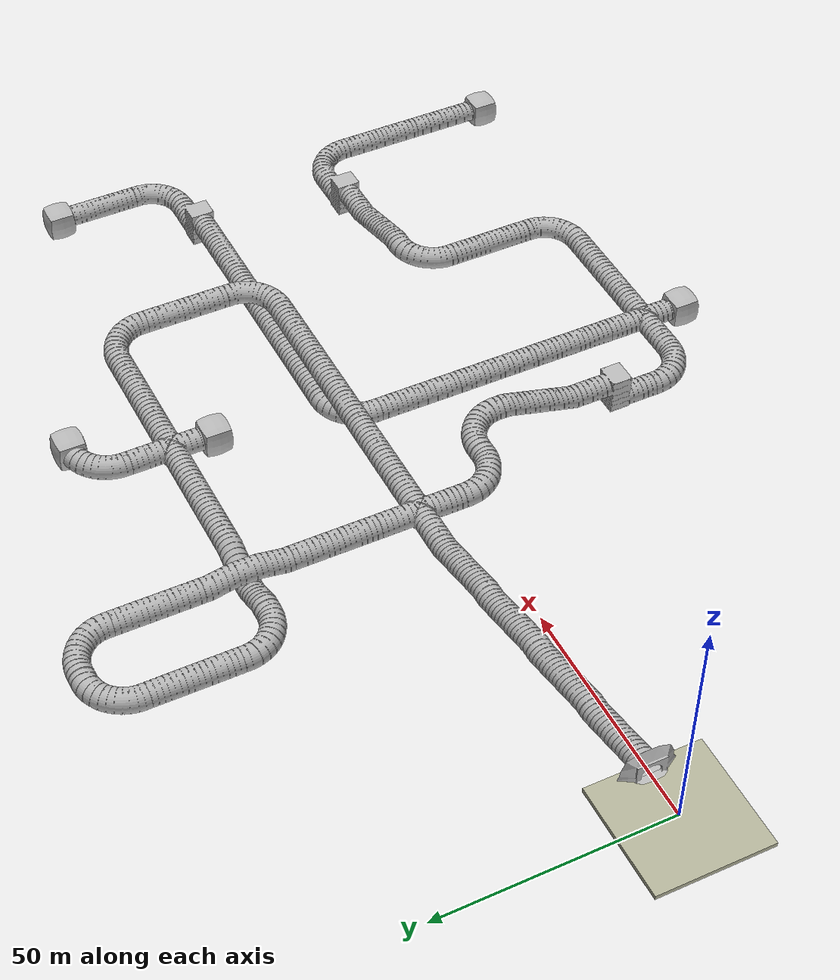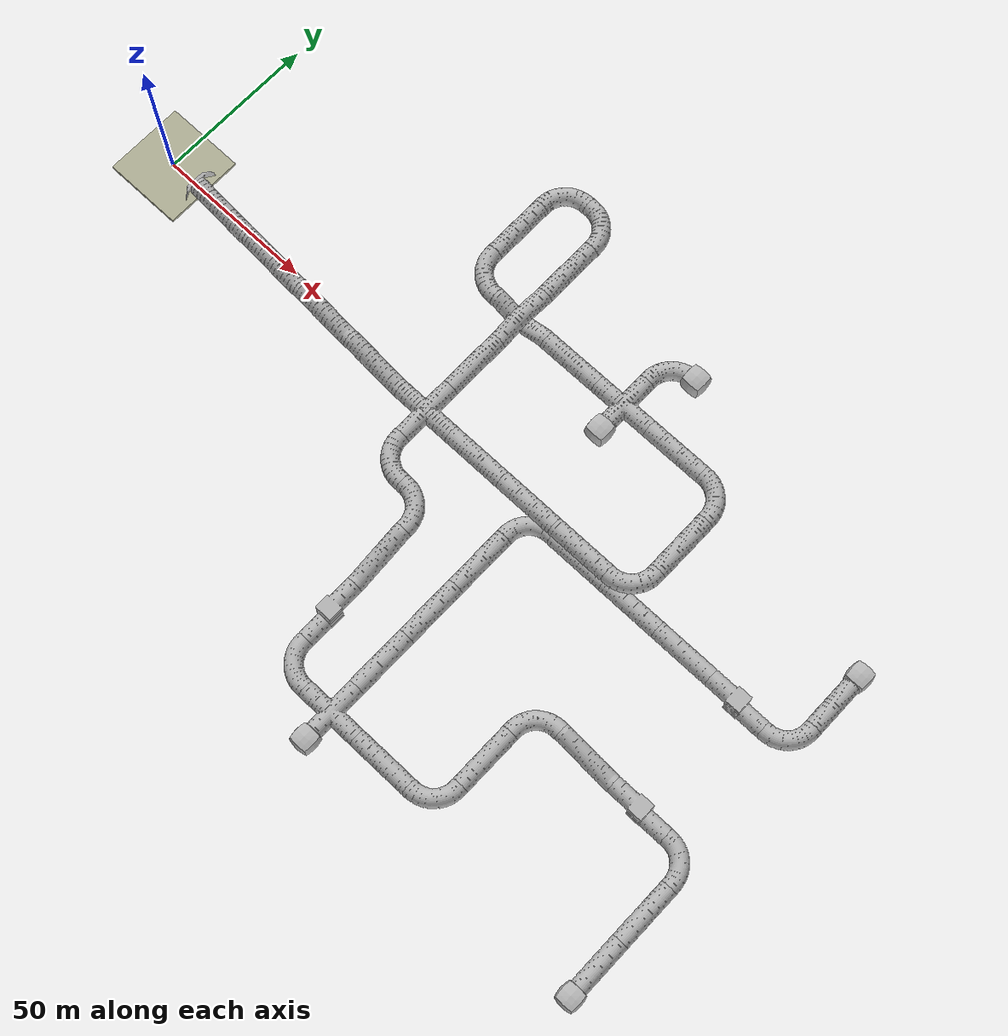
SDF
<sdf version="1.6">
 <world name="default">
  <scene>
   <ambient>0.0 0.0 0.0 1.0</ambient>
   <background>0.34 0.39 0.43 1.0</background>
   <grid>false</grid>
   <origin_visual>true</origin_visual>
  </scene>
  <model name="staging">
   <pose>0 0 -0.002 0 0 0</pose>
   <static>true</static>
   <link name="link">
    <pose>0 0 -0.5 0 0 0</pose>
    <visual name="visual">
     <geometry><box><size>25 25 1</size></box></geometry>
     <material>
      <script><uri>file://media/materials/scripts/gazebo.material</uri><name>Gazebo/Residential</name></script>
     </material>
    </visual>
    <collision name="collision"><geometry><box><size>25 20 1</size></box></geometry></collision>
   </link>
  </model>
  <model name="mine_entrance">
   <pose>10
        0
        -0.001
        0
        0
        -1.5707963267948966</pose>
   <static>true</static>
   <link name="link">
    <collision name="collision">
     <geometry>
      <mesh>
       <scale>0.008
                0.008 0.008</scale>
       <uri>model://mine_entrance/meshes/Entrance.obj</uri>
      </mesh>
     </geometry>
    </collision>
    <visual name="visual">
     <geometry>
      <mesh>
       <scale>0.008
                0.008 0.008</scale>
       <uri>model://mine_entrance/meshes/Entrance.obj</uri>
      </mesh>
     </geometry>
    </visual>
   </link>
  </model>
  <model name="start_area">
   <static>true</static>
   <pose>10
        0
        1.5
        0
        0
        0</pose>
   <link name="link">
    <collision name="collision">
     <geometry><box><size>1.0
                5.0
                3.0</size></box></geometry>
     <surface><contact><collide_without_contact>1</collide_without_contact></contact></surface>
    </collision>
    <sensor name="start_area_sensor" type="contact"><contact><collision>collision</collision></contact></sensor>
   </link>
   <plugin name="touch_start_area" filename="libTouchPlugin.so">
    <sensor>start_area_sensor</sensor>
    <time>0.001</time>
    <namespace>subt/start</namespace>
    <enabled>true</enabled>
   </plugin>
  </model>
  <plugin name="game_logic_plugin" filename="libGameLogicPlugin.so">
   <object_of_interest><name>cone_1</name></object_of_interest>
   <object_of_interest><name>cone_2</name></object_of_interest>
  </plugin>
  <light name="user_spot_light_0" type="spot">
   <pose>12 0 15 0 0.65 0</pose>
   <diffuse>1 1 1 1</diffuse>
   <specular>0.1 0.1 0.1 1</specular>
   <direction>0 0 -1</direction>
   <attenuation>
    <range>30</range>
    <constant>0.001</constant>
    <linear>0.01</linear>
    <quadratic>0.000</quadratic>
   </attenuation>
   <spot><inner_angle>0.0</inner_angle><outer_angle>1.5</outer_angle><falloff>0.01</falloff></spot>
  </light>
  <include><uri>model://mine_tile_6</uri><name>tile_1</name><pose>20 0 -5 0 0 1.5708</pose></include>
  <include><uri>model://mine_tile_6</uri><name>tile_2</name><pose>40 0 -10 0 0 1.5708</pose></include>
  <include><uri>model://mine_tile_6</uri><name>tile_3</name><pose>60 0 -15 0 0 1.5708</pose></include>
  <include><uri>model://mine_tile_6</uri><name>tile_4</name><pose>80 0 -20 0 0 1.5708</pose></include>
  <include><uri>model://mine_tile_1</uri><name>tile_5</name><pose>100 0 -20 0 0 0</pose></include>
  <include><uri>model://mine_tile_5</uri><name>tile_6</name><pose>120 0 -20 0 0 1.5708</pose></include>
  <include><uri>model://mine_tile_5</uri><name>tile_7</name><pose>140 0 -20 0 0 1.5708</pose></include>
  <include><uri>model://mine_tile_5</uri><name>tile_8</name><pose>160 0 -20 0 0 1.5708</pose></include>
  <include><uri>model://mine_tile_2</uri><name>tile_9</name><pose>180 0 -20 0 0 3.14159</pose></include>
  <include><uri>model://mine_tile_5</uri><name>tile_10</name><pose>180 20 -20 0 0 0</pose></include>
  <include><uri>model://mine_tile_2</uri><name>tile_11</name><pose>180 40 -20 0 0 -1.5708</pose></include>
  <include><uri>model://mine_tile_5</uri><name>tile_12</name><pose>160 40 -20 0 0 1.5708</pose></include>
  <include><uri>model://mine_tile_1</uri><name>tile_13</name><pose>140 40 -20 0 0 0</pose></include>
  <include><uri>model://mine_tile_5</uri><name>tile_14</name><pose>120 40 -20 0 0 1.5708</pose></include>
  <include><uri>model://mine_tile_4</uri><name>tile_15</name><pose>100 40 -20 0 0 0</pose></include>
  <include><uri>model://mine_tile_2</uri><name>tile_16</name><pose>80 40 -20 0 0 1.5708</pose></include>
  <include><uri>model://mine_tile_5</uri><name>tile_17</name><pose>80 60 -20 0 0 0</pose></include>
  <include><uri>model://mine_tile_2</uri><name>tile_18</name><pose>80 80 -20 0 0 0</pose></include>
  <include><uri>model://mine_tile_2</uri><name>tile_19</name><pose>100 80 -20 0 0 -1.5708</pose></include>
  <include><uri>model://mine_tile_5</uri><name>tile_20</name><pose>100 60 -20 0 0 0</pose></include>
  <include><uri>model://mine_tile_5</uri><name>tile_21</name><pose>100 20 -20 0 0 0</pose></include>
  <include><uri>model://mine_tile_2</uri><name>tile_22</name><pose>140 60 -20 0 0 0</pose></include>
  <include><uri>model://mine_tile_2</uri><name>tile_23</name><pose>100 -20 -20 0 0 1.5708</pose></include>
  <include><uri>model://mine_tile_2</uri><name>tile_24</name><pose>120 -20 -20 0 0 -1.5708</pose></include>
  <include><uri>model://mine_tile_6</uri><name>tile_25</name><pose>120 -40 -25 0 0 0</pose></include>
  <include><uri>model://mine_tile_7</uri><name>tile_26</name><pose>120 -60 -30 0 0 0</pose></include>
  <include><uri>model://mine_tile_2</uri><name>tile_27</name><pose>120 -80 -30 0 0 1.5708</pose></include>
  <include><uri>model://mine_tile_1</uri><name>tile_28</name><pose>140 -80 -30 0 0 0</pose></include>
  <include><uri>model://mine_tile_5</uri><name>tile_29</name><pose>140 -60 -30 0 0 0</pose></include>
  <include><uri>model://mine_tile_5</uri><name>tile_30</name><pose>140 -40 -30 0 0 0</pose></include>
  <include><uri>model://mine_tile_5</uri><name>tile_31</name><pose>140 -20 -30 0 0 0</pose></include>
  <include><uri>model://mine_tile_2</uri><name>tile_32</name><pose>140 0 -30 0 0 0</pose></include>
  <include><uri>model://mine_tile_5</uri><name>tile_33</name><pose>160 0 -30 0 0 1.5708</pose></include>
  <include><uri>model://mine_tile_5</uri><name>tile_34</name><pose>180 0 -30 0 0 1.5708</pose></include>
  <include><uri>model://mine_tile_5</uri><name>tile_35</name><pose>200 0 -30 0 0 1.5708</pose></include>
  <include><uri>model://mine_tile_7</uri><name>tile_36</name><pose>220 0 -35 0 0 1.5708</pose></include>
  <include><uri>model://mine_tile_2</uri><name>tile_37</name><pose>240 0 -35 0 0 3.14159</pose></include>
  <include><uri>model://mine_tile_5</uri><name>tile_38</name><pose>240 20 -35 0 0 0</pose></include>
  <include><uri>model://mine_tile_5</uri><name>tile_39</name><pose>160 -80 -30 0 0 1.5708</pose></include>
  <include><uri>model://mine_tile_2</uri><name>tile_40</name><pose>180 -80 -30 0 0 3.14159</pose></include>
  <include><uri>model://mine_tile_5</uri><name>tile_41</name><pose>180 -60 -30 0 0 0</pose></include>
  <include><uri>model://mine_tile_2</uri><name>tile_42</name><pose>180 -40 -30 0 0 0</pose></include>
  <include><uri>model://mine_tile_6</uri><name>tile_43</name><pose>200 -40 -35 0 0 1.5708</pose></include>
  <include><uri>model://mine_tile_7</uri><name>tile_44</name><pose>220 -40 -40 0 0 1.5708</pose></include>
  <include><uri>model://mine_tile_2</uri><name>tile_45</name><pose>240 -40 -40 0 0 -1.5708</pose></include>
  <include><uri>model://mine_tile_5</uri><name>tile_46</name><pose>240 -60 -40 0 0 0</pose></include>
  <include><uri>model://mine_tile_5</uri><name>tile_47</name><pose>240 -80 -40 0 0 0</pose></include>
  <include><uri>model://mine_tile_blocker</uri><name>blocker_1</name><pose>140 30 -20 0 0 0</pose></include>
  <include><uri>model://mine_tile_blocker</uri><name>blocker_2</name><pose>150 60 -20 0 0 0</pose></include>
  <include><uri>model://mine_tile_blocker</uri><name>blocker_3</name><pose>140 -90 -30 0 0 0</pose></include>
  <include><uri>model://mine_tile_blocker</uri><name>blocker_4</name><pose>240 30 -35 0 0 0</pose></include>
  <include><uri>model://mine_tile_blocker</uri><name>blocker_5</name><pose>240 -90 -40 0 0 0</pose></include>
  <plugin name="comms_broker_plugin" filename="libCommsBrokerPlugin.so"/>
  <plugin name="ros_interface_plugin" filename="librotors_gazebo_ros_interface_plugin.so"/>
 </world>
</sdf>

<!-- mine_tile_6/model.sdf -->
<sdf version="1.6">
  <model name="mine_tile_6">
    <static>true</static>
    <link name="link">
      <pose>0 0 0 0 0 0</pose>
      <collision name="collision">
        <geometry>
          <mesh>
            <uri>model://mine_tile_6/meshes/mine_tile_6.dae</uri>
          </mesh>
        </geometry>
      </collision>

      <collision name="collision_ground_1">
        <pose>0 9.323 5 0 0 0</pose>
        <geometry>
          <box>
            <size>6.356 1.354 0.001</size>
          </box>
        </geometry>
      </collision>

      <collision name="collision_ground_2">
        <pose>0 -0.070 2.467 0.2827433 0 0</pose>
        <geometry>
          <box>
            <size>6.356 18.152 0.001</size>
          </box>
        </geometry>
      </collision>

      <collision name="collision_ground_3">
        <pose>0 -9.272 0 0 0 0</pose>
        <geometry>
          <box>
            <size>6.356 1.455 0.001</size>
          </box>
        </geometry>
      </collision>

      <visual name="visual">
        <geometry>
          <mesh>
            <uri>model://mine_tile_6/meshes/mine_tile_6.dae</uri>
          </mesh>
        </geometry>
      </visual>
    </link>
  </model>
</sdf>

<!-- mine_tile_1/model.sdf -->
<sdf version="1.6">
  <model name="mine_tile_1">
    <static>true</static>
    <link name="link">
      <collision name="collision">
        <geometry>
          <mesh>
            <uri>model://mine_tile_1/meshes/mine_tile_1.dae</uri>
          </mesh>
        </geometry>
      </collision>
      <collision name="collision_ground">
        <geometry>
          <box>
            <size>20 20 0.001</size>
          </box>
        </geometry>
      </collision>
      <visual name="visual">
        <geometry>
          <mesh>
            <uri>model://mine_tile_1/meshes/mine_tile_1.dae</uri>
          </mesh>
        </geometry>
      </visual>
    </link>
  </model>
</sdf>

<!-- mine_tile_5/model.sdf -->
<sdf version="1.6">
  <model name="mine_tile_5">
    <static>true</static>
    <link name="link">
      <collision name="collision">
        <geometry>
          <mesh>
            <uri>model://mine_tile_5/meshes/mine_tile_5.dae</uri>
          </mesh>
        </geometry>
      </collision>
      <collision name="collision_ground">
        <geometry>
          <box>
            <size>20 20 0.001</size>
          </box>
        </geometry>
      </collision>
      <visual name="visual">
        <geometry>
          <mesh>
            <uri>model://mine_tile_5/meshes/mine_tile_5.dae</uri>
          </mesh>
        </geometry>
      </visual>
    </link>
  </model>
</sdf>

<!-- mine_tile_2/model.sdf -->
<sdf version="1.6">
  <model name="mine_tile_2">
    <static>true</static>
    <link name="link">
      <collision name="collision">
        <geometry>
          <mesh>
            <uri>model://mine_tile_2/meshes/mine_tile_2.dae</uri>
          </mesh>
        </geometry>
      </collision>
      <collision name="collision_ground">
        <geometry>
          <box>
            <size>20 20 0.001</size>
          </box>
        </geometry>
      </collision>
      <visual name="visual">
        <geometry>
          <mesh>
            <uri>model://mine_tile_2/meshes/mine_tile_2.dae</uri>
          </mesh>
        </geometry>
      </visual>
    </link>
  </model>
</sdf>

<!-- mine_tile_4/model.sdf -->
<sdf version="1.6">
  <model name="mine_tile_4">
    <static>true</static>
    <link name="link">
      <pose>0 0 0 0 0 0</pose>
      <collision name="collision">
        <geometry>
          <mesh>
            <uri>model://mine_tile_4/meshes/mine_tile_4.dae</uri>
          </mesh>
        </geometry>
      </collision>

      <collision name="collision_ground_1">
        <pose>0 9.32313 0 0 0 0</pose>
        <geometry>
          <box>
            <size>4.96733 1.35375 0.001</size>
          </box>
        </geometry>
      </collision>

      <collision name="collision_ground_2">
        <pose>0 5.630 0.600 -0.196366994 0 0</pose>
        <geometry>
          <box>
            <size>4.96733 6.1507 0.001</size>
          </box>
        </geometry>
      </collision>

      <collision name="collision_ground_3">
        <pose>0 0 1.2 0 0 0</pose>
        <geometry>
          <box>
            <size>4.96733 5.2175 0.001</size>
          </box>
        </geometry>
      </collision>

      <collision name="collision_ground_4">
        <pose>0 -5.620 0.600000 0.196366994 0 0</pose>
        <geometry>
          <box>
            <size>4.96733 6.1507 0.001</size>
          </box>
        </geometry>
      </collision>

      <collision name="collision_ground_5">
        <pose>0 -9.31813 0 0 0 0</pose>
        <geometry>
          <box>
            <size>4.96733 1.36375 0.001</size>
          </box>
        </geometry>
      </collision>

      <collision name="collision_ground_6">
        <pose>9.32313 0 0 0 0 0</pose>
        <geometry>
          <box>
            <size>1.35375 4.96733 0.001</size>
          </box>
        </geometry>
      </collision>

      <collision name="collision_ground_7">
        <pose>5.630 0 -1.25 0 -0.39287361 0</pose>
        <geometry>
          <box>
            <size>6.53001 4.96733 0.001</size>
          </box>
        </geometry>
      </collision>

      <collision name="collision_ground_8">
        <pose>0 0 -2.5 0 0 0</pose>
        <geometry>
          <box>
            <size>5.2175 4.96733 0.001</size>
          </box>
        </geometry>
      </collision>

      <collision name="collision_ground_9">
        <pose>-5.620 0 -1.25 0 0.39287361 0</pose>
        <geometry>
          <box>
            <size>6.53001 4.96733 0.001</size>
          </box>
        </geometry>
      </collision>

      <collision name="collision_ground_10">
        <pose>-9.31813 0 0 0 0 0</pose>
        <geometry>
          <box>
            <size>1.36375 4.96733 0.001</size>
          </box>
        </geometry>
      </collision>

      <visual name="visual">
        <geometry>
          <mesh>
            <uri>model://mine_tile_4/meshes/mine_tile_4.dae</uri>
          </mesh>
        </geometry>
      </visual>
    </link>
  </model>
</sdf>

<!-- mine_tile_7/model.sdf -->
<sdf version="1.6">
  <model name="mine_tile_7">
    <static>true</static>
    <link name="link">
      <collision name="collision">
        <geometry>
          <mesh>
            <uri>model://mine_tile_7/meshes/mine_tile_7.dae</uri>
          </mesh>
        </geometry>
      </collision>
      <collision name="collision_ground_1">
        <pose>0 6.14028 5 0 0 0</pose>
        <geometry>
          <box>
            <size>7.19538 7.71943 0.001</size>
          </box>
        </geometry>
      </collision>

      <collision name="collision_ground_2">
        <pose>0 2.28057 2.5 0 0 0</pose>
        <geometry>
          <box>
            <size>7.19538 0.001 5</size>
          </box>
        </geometry>
      </collision>
      <collision name="collision_ground_3">
        <pose>0 -3.8572 0 0 0 0</pose>
        <geometry>
          <box>
            <size>7.19538 12.2806 0.001</size>
          </box>
        </geometry>
      </collision>
      <collision name="collision_ground_4">
        <pose>0 -2.42079 6.38525 0 0 0</pose>
        <geometry>
          <box>
            <size>7.19538 0.001 5.69769</size>
          </box>
        </geometry>
      </collision>
      <collision name="collision_ground_5">
        <pose>-2.83306 0.079873 4.58439 0 0 0</pose>
        <geometry>
          <box>
            <size>0.001 5.1333 9.16878</size>
          </box>
        </geometry>
      </collision>
      <collision name="collision_ground_6">
        <pose>2.83306 0.079873 4.58439 0 0 0</pose>
        <geometry>
          <box>
            <size>0.001 5.1333 9.16878</size>
          </box>
        </geometry>
      </collision>
      <collision name="collision_ground_7">
        <pose>0 0.079873 8.72854 0 0 0</pose>
        <geometry>
          <box>
            <size>7.95991 5.1333 0.001</size>
          </box>
        </geometry>
      </collision>

      <visual name="visual">
        <geometry>
          <mesh>
            <uri>model://mine_tile_7/meshes/mine_tile_7.dae</uri>
          </mesh>
        </geometry>
      </visual>
    </link>
  </model>
</sdf>

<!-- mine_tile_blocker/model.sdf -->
<sdf version="1.6">
  <model name="mine_tile_blocker">
    <static>true</static>
    <link name="link">
      <pose>0 0 0 0 0 0</pose>
      <collision name="collision">
        <geometry>
          <mesh>
            <uri>model://mine_tile_blocker/meshes/mine_tile_blocker.dae</uri>
          </mesh>
        </geometry>
      </collision>
      <visual name="visual">
        <geometry>
          <mesh>
            <uri>model://mine_tile_blocker/meshes/mine_tile_blocker.dae</uri>
          </mesh>
        </geometry>
      </visual>
    </link>
  </model>
</sdf>
